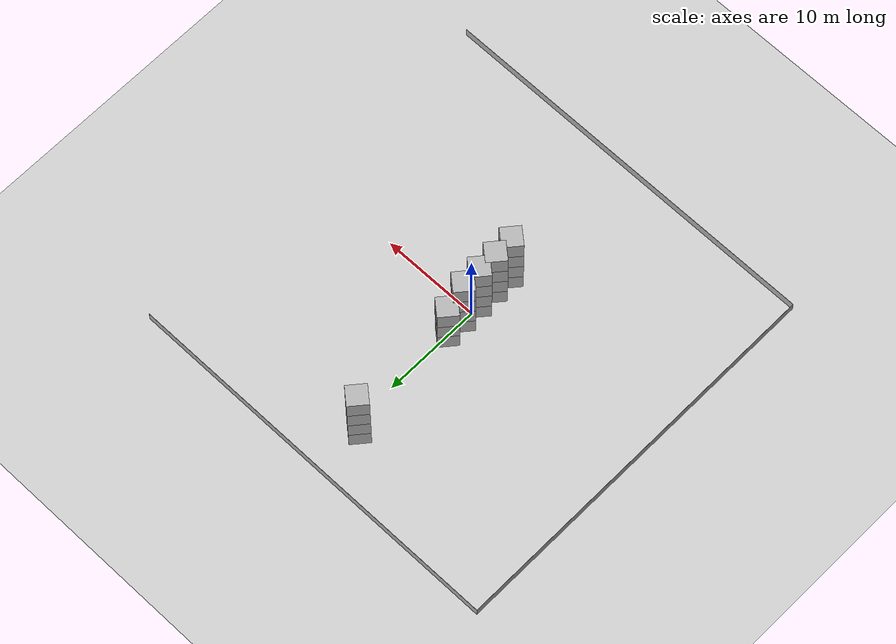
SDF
<sdf version="1.9">
 <world name="swarm_ro_col_glas">
  <model name="ground_plane">
   <static>true</static>
   <link name="link">
    <collision name="collision">
     <geometry><plane><normal>0 0 1</normal><size>1 1</size></plane></geometry>
    </collision>
    <visual name="visual">
     <geometry><plane><normal>0 0 1</normal><size>100 100</size></plane></geometry>
     <material>
      <ambient>0.8 0.8 0.8 1</ambient>
      <diffuse>0.8 0.8 0.8 1</diffuse>
      <specular>0.8 0.8 0.8 1</specular>
     </material>
    </visual>
    <inertial>
     <mass>1</mass>
     <inertia><ixx>1</ixx><ixy>0</ixy><ixz>0</ixz><iyy>1</iyy><iyz>0</iyz><izz>1</izz></inertia>
    </inertial>
   </link>
  </model>
  <model name="wall_1">
   <pose>-20 0 .5 0 0 -1.57</pose>
   <static>true</static>
   <link name="link">
    <collision name="collision"><geometry><box><size>40 .01 1</size></box></geometry></collision>
    <visual name="visual">
     <geometry><box><size>40 .01 1</size></box></geometry>
     <material>
      <ambient>0.7 0.7 0.7 1</ambient>
      <diffuse>0.7 0.7 0.7 1</diffuse>
      <specular>0.7 0.7 0.7 1</specular>
     </material>
    </visual>
    <inertial>
     <mass>1</mass>
     <inertia><ixx>1</ixx><ixy>0</ixy><ixz>0</ixz><iyy>1</iyy><iyz>0</iyz><izz>1</izz></inertia>
    </inertial>
   </link>
  </model>
  <model name="wall_3">
   <pose>0 20 .5 0 0 0</pose>
   <static>true</static>
   <link name="link">
    <collision name="collision"><geometry><box><size>40 .01 1</size></box></geometry></collision>
    <visual name="visual">
     <geometry><box><size>40 .01 1</size></box></geometry>
     <material>
      <ambient>0.7 0.7 0.7 1</ambient>
      <diffuse>0.7 0.7 0.7 1</diffuse>
      <specular>0.7 0.7 0.7 1</specular>
     </material>
    </visual>
    <inertial>
     <mass>1</mass>
     <inertia><ixx>1</ixx><ixy>0</ixy><ixz>0</ixz><iyy>1</iyy><iyz>0</iyz><izz>1</izz></inertia>
    </inertial>
   </link>
  </model>
  <model name="wall_4">
   <pose>0 -20 .5 0 0 0</pose>
   <static>true</static>
   <link name="link">
    <collision name="collision"><geometry><box><size>40 .01 1</size></box></geometry></collision>
    <visual name="visual">
     <geometry><box><size>40 .01 1</size></box></geometry>
     <material>
      <ambient>0.7 0.7 0.7 1</ambient>
      <diffuse>0.7 0.7 0.7 1</diffuse>
      <specular>0.7 0.7 0.7 1</specular>
     </material>
    </visual>
    <inertial>
     <mass>1</mass>
     <inertia><ixx>1</ixx><ixy>0</ixy><ixz>0</ixz><iyy>1</iyy><iyz>0</iyz><izz>1</izz></inertia>
    </inertial>
   </link>
  </model>
  <model name="obstacle_left_1">
   <static>true</static>
   <pose>0 -5 1 0 0 -0.7</pose>
   <link name="link">
    <collision name="collision"><geometry><box><size>2 2 2</size></box></geometry></collision>
    <visual name="visual">
     <geometry><box><size>2 2 2</size></box></geometry>
     <material>
      <ambient>0.7 0.7 0.7 1</ambient>
      <diffuse>0.7 0.7 0.7 1</diffuse>
      <specular>0.7 0.7 0.7 1</specular>
     </material>
    </visual>
   </link>
  </model>
  <model name="obstacle_left_11">
   <static>true</static>
   <pose>0 -5 3 0 0 -0.7</pose>
   <link name="link">
    <collision name="collision"><geometry><box><size>2 2 2</size></box></geometry></collision>
    <visual name="visual">
     <geometry><box><size>2 2 2</size></box></geometry>
     <material>
      <ambient>0.7 0.7 0.7 1</ambient>
      <diffuse>0.7 0.7 0.7 1</diffuse>
      <specular>0.7 0.7 0.7 1</specular>
     </material>
    </visual>
   </link>
  </model>
  <model name="obstacle_left_12">
   <static>true</static>
   <pose>0 -5 5 0 0 -0.7</pose>
   <link name="link">
    <collision name="collision"><geometry><box><size>2 2 2</size></box></geometry></collision>
    <visual name="visual">
     <geometry><box><size>2 2 2</size></box></geometry>
     <material>
      <ambient>0.7 0.7 0.7 1</ambient>
      <diffuse>0.7 0.7 0.7 1</diffuse>
      <specular>0.7 0.7 0.7 1</specular>
     </material>
    </visual>
   </link>
  </model>
  <model name="obstacle_left_13">
   <static>true</static>
   <pose>0 -5 7 0 0 -0.7</pose>
   <link name="link">
    <collision name="collision"><geometry><box><size>2 2 2</size></box></geometry></collision>
    <visual name="visual">
     <geometry><box><size>2 2 2</size></box></geometry>
     <material>
      <ambient>0.7 0.7 0.7 1</ambient>
      <diffuse>0.7 0.7 0.7 1</diffuse>
      <specular>0.7 0.7 0.7 1</specular>
     </material>
    </visual>
   </link>
  </model>
  <model name="obstacle_left_2">
   <static>true</static>
   <pose>0 -3 1 0 0 -0.7</pose>
   <link name="link">
    <collision name="collision"><geometry><box><size>2 2 2</size></box></geometry></collision>
    <visual name="visual">
     <geometry><box><size>2 2 2</size></box></geometry>
     <material>
      <ambient>0.7 0.7 0.7 1</ambient>
      <diffuse>0.7 0.7 0.7 1</diffuse>
      <specular>0.7 0.7 0.7 1</specular>
     </material>
    </visual>
   </link>
  </model>
  <model name="obstacle_left_21">
   <static>true</static>
   <pose>0 -3 3 0 0 -0.7</pose>
   <link name="link">
    <collision name="collision"><geometry><box><size>2 2 2</size></box></geometry></collision>
    <visual name="visual">
     <geometry><box><size>2 2 2</size></box></geometry>
     <material>
      <ambient>0.7 0.7 0.7 1</ambient>
      <diffuse>0.7 0.7 0.7 1</diffuse>
      <specular>0.7 0.7 0.7 1</specular>
     </material>
    </visual>
   </link>
  </model>
  <model name="obstacle_left_22">
   <static>true</static>
   <pose>0 -3 5 0 0 -0.7</pose>
   <link name="link">
    <collision name="collision"><geometry><box><size>2 2 2</size></box></geometry></collision>
    <visual name="visual">
     <geometry><box><size>2 2 2</size></box></geometry>
     <material>
      <ambient>0.7 0.7 0.7 1</ambient>
      <diffuse>0.7 0.7 0.7 1</diffuse>
      <specular>0.7 0.7 0.7 1</specular>
     </material>
    </visual>
   </link>
  </model>
  <model name="obstacle_left_23">
   <static>true</static>
   <pose>0 -3 7 0 0 -0.7</pose>
   <link name="link">
    <collision name="collision"><geometry><box><size>2 2 2</size></box></geometry></collision>
    <visual name="visual">
     <geometry><box><size>2 2 2</size></box></geometry>
     <material>
      <ambient>0.7 0.7 0.7 1</ambient>
      <diffuse>0.7 0.7 0.7 1</diffuse>
      <specular>0.7 0.7 0.7 1</specular>
     </material>
    </visual>
   </link>
  </model>
  <model name="obstacle_left_3">
   <static>true</static>
   <pose>0 -1 1 0 0 -0.7</pose>
   <link name="link">
    <collision name="collision"><geometry><box><size>2 2 2</size></box></geometry></collision>
    <visual name="visual">
     <geometry><box><size>2 2 2</size></box></geometry>
     <material>
      <ambient>0.7 0.7 0.7 1</ambient>
      <diffuse>0.7 0.7 0.7 1</diffuse>
      <specular>0.7 0.7 0.7 1</specular>
     </material>
    </visual>
   </link>
  </model>
  <model name="obstacle_left_31">
   <static>true</static>
   <pose>0 -1 3 0 0 -0.7</pose>
   <link name="link">
    <collision name="collision"><geometry><box><size>2 2 2</size></box></geometry></collision>
    <visual name="visual">
     <geometry><box><size>2 2 2</size></box></geometry>
     <material>
      <ambient>0.7 0.7 0.7 1</ambient>
      <diffuse>0.7 0.7 0.7 1</diffuse>
      <specular>0.7 0.7 0.7 1</specular>
     </material>
    </visual>
   </link>
  </model>
  <model name="obstacle_left_32">
   <static>true</static>
   <pose>0 -1 5 0 0 -0.7</pose>
   <link name="link">
    <collision name="collision"><geometry><box><size>2 2 2</size></box></geometry></collision>
    <visual name="visual">
     <geometry><box><size>2 2 2</size></box></geometry>
     <material>
      <ambient>0.7 0.7 0.7 1</ambient>
      <diffuse>0.7 0.7 0.7 1</diffuse>
      <specular>0.7 0.7 0.7 1</specular>
     </material>
    </visual>
   </link>
  </model>
  <model name="obstacle_left_33">
   <static>true</static>
   <pose>0 -1 7 0 0 -0.7</pose>
   <link name="link">
    <collision name="collision"><geometry><box><size>2 2 2</size></box></geometry></collision>
    <visual name="visual">
     <geometry><box><size>2 2 2</size></box></geometry>
     <material>
      <ambient>0.7 0.7 0.7 1</ambient>
      <diffuse>0.7 0.7 0.7 1</diffuse>
      <specular>0.7 0.7 0.7 1</specular>
     </material>
    </visual>
   </link>
  </model>
  <model name="obstacle_left_4">
   <static>true</static>
   <pose>0 1 1 0 0 -0.7</pose>
   <link name="link">
    <collision name="collision"><geometry><box><size>2 2 2</size></box></geometry></collision>
    <visual name="visual">
     <geometry><box><size>2 2 2</size></box></geometry>
     <material>
      <ambient>0.7 0.7 0.7 1</ambient>
      <diffuse>0.7 0.7 0.7 1</diffuse>
      <specular>0.7 0.7 0.7 1</specular>
     </material>
    </visual>
   </link>
  </model>
  <model name="obstacle_left_41">
   <static>true</static>
   <pose>0 1 3 0 0 -0.7</pose>
   <link name="link">
    <collision name="collision"><geometry><box><size>2 2 2</size></box></geometry></collision>
    <visual name="visual">
     <geometry><box><size>2 2 2</size></box></geometry>
     <material>
      <ambient>0.7 0.7 0.7 1</ambient>
      <diffuse>0.7 0.7 0.7 1</diffuse>
      <specular>0.7 0.7 0.7 1</specular>
     </material>
    </visual>
   </link>
  </model>
  <model name="obstacle_left_42">
   <static>true</static>
   <pose>0 1 5 0 0 -0.7</pose>
   <link name="link">
    <collision name="collision"><geometry><box><size>2 2 2</size></box></geometry></collision>
    <visual name="visual">
     <geometry><box><size>2 2 2</size></box></geometry>
     <material>
      <ambient>0.7 0.7 0.7 1</ambient>
      <diffuse>0.7 0.7 0.7 1</diffuse>
      <specular>0.7 0.7 0.7 1</specular>
     </material>
    </visual>
   </link>
  </model>
  <model name="obstacle_left_43">
   <static>true</static>
   <pose>0 1 7 0 0 -0.7</pose>
   <link name="link">
    <collision name="collision"><geometry><box><size>2 2 2</size></box></geometry></collision>
    <visual name="visual">
     <geometry><box><size>2 2 2</size></box></geometry>
     <material>
      <ambient>0.7 0.7 0.7 1</ambient>
      <diffuse>0.7 0.7 0.7 1</diffuse>
      <specular>0.7 0.7 0.7 1</specular>
     </material>
    </visual>
   </link>
  </model>
  <model name="obstacle_left_50">
   <static>true</static>
   <pose>0 3 1 0 0 -0.7</pose>
   <link name="link">
    <collision name="collision"><geometry><box><size>2 2 2</size></box></geometry></collision>
    <visual name="visual">
     <geometry><box><size>2 2 2</size></box></geometry>
     <material>
      <ambient>0.7 0.7 0.7 1</ambient>
      <diffuse>0.7 0.7 0.7 1</diffuse>
      <specular>0.7 0.7 0.7 1</specular>
     </material>
    </visual>
   </link>
  </model>
  <model name="obstacle_left_51">
   <static>true</static>
   <pose>0 3 3 0 0 -0.7</pose>
   <link name="link">
    <collision name="collision"><geometry><box><size>2 2 2</size></box></geometry></collision>
    <visual name="visual">
     <geometry><box><size>2 2 2</size></box></geometry>
     <material>
      <ambient>0.7 0.7 0.7 1</ambient>
      <diffuse>0.7 0.7 0.7 1</diffuse>
      <specular>0.7 0.7 0.7 1</specular>
     </material>
    </visual>
   </link>
  </model>
  <model name="obstacle_left_52">
   <static>true</static>
   <pose>0 3 5 0 0 -0.7</pose>
   <link name="link">
    <collision name="collision"><geometry><box><size>2 2 2</size></box></geometry></collision>
    <visual name="visual">
     <geometry><box><size>2 2 2</size></box></geometry>
     <material>
      <ambient>0.7 0.7 0.7 1</ambient>
      <diffuse>0.7 0.7 0.7 1</diffuse>
      <specular>0.7 0.7 0.7 1</specular>
     </material>
    </visual>
   </link>
  </model>
  <model name="obstacle_left_90">
   <static>true</static>
   <pose>-1 15 1 0 0 -0.7</pose>
   <link name="link">
    <collision name="collision"><geometry><box><size>2 2 2</size></box></geometry></collision>
    <visual name="visual">
     <geometry><box><size>2 2 2</size></box></geometry>
     <material>
      <ambient>0.7 0.7 0.7 1</ambient>
      <diffuse>0.7 0.7 0.7 1</diffuse>
      <specular>0.7 0.7 0.7 1</specular>
     </material>
    </visual>
   </link>
  </model>
  <model name="obstacle_left_91">
   <static>true</static>
   <pose>-1 15 3 0 0 -0.7</pose>
   <link name="link">
    <collision name="collision"><geometry><box><size>2 2 2</size></box></geometry></collision>
    <visual name="visual">
     <geometry><box><size>2 2 2</size></box></geometry>
     <material>
      <ambient>0.7 0.7 0.7 1</ambient>
      <diffuse>0.7 0.7 0.7 1</diffuse>
      <specular>0.7 0.7 0.7 1</specular>
     </material>
    </visual>
   </link>
  </model>
  <model name="obstacle_left_92">
   <static>true</static>
   <pose>-1 15 5 0 0 -0.7</pose>
   <link name="link">
    <collision name="collision"><geometry><box><size>2 2 2</size></box></geometry></collision>
    <visual name="visual">
     <geometry><box><size>2 2 2</size></box></geometry>
     <material>
      <ambient>0.7 0.7 0.7 1</ambient>
      <diffuse>0.7 0.7 0.7 1</diffuse>
      <specular>0.7 0.7 0.7 1</specular>
     </material>
    </visual>
   </link>
  </model>
  <model name="obstacle_left_93">
   <static>true</static>
   <pose>-1 15 7 0 0 -0.7</pose>
   <link name="link">
    <collision name="collision"><geometry><box><size>2 2 2</size></box></geometry></collision>
    <visual name="visual">
     <geometry><box><size>2 2 2</size></box></geometry>
     <material>
      <ambient>0.7 0.7 0.7 1</ambient>
      <diffuse>0.7 0.7 0.7 1</diffuse>
      <specular>0.7 0.7 0.7 1</specular>
     </material>
    </visual>
   </link>
  </model>
 </world>
</sdf>
